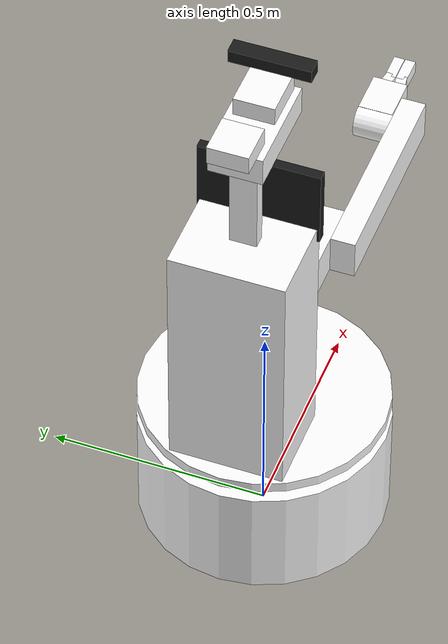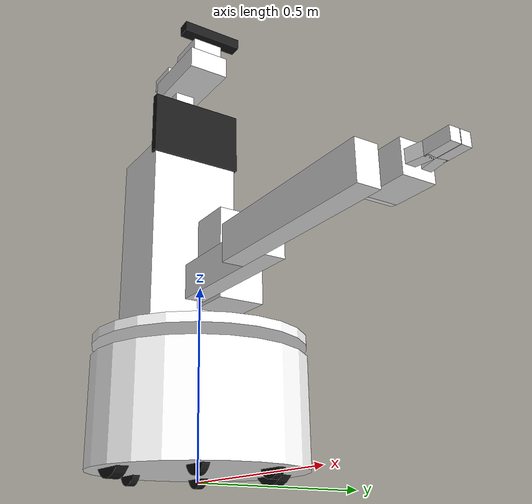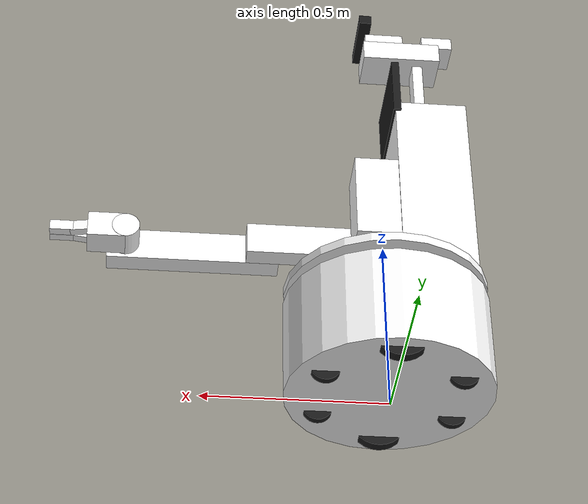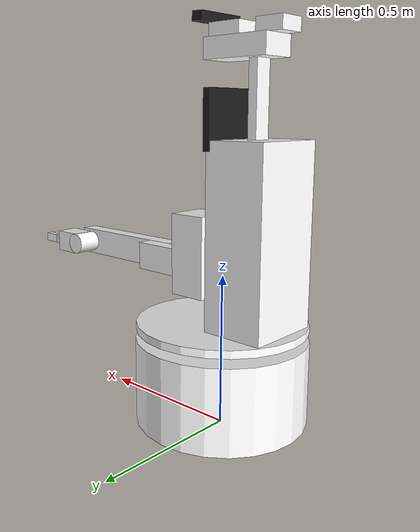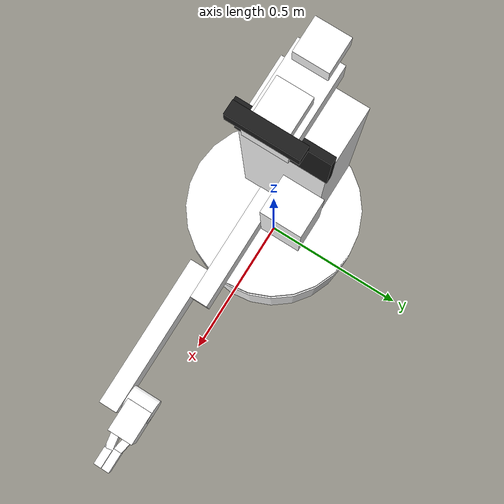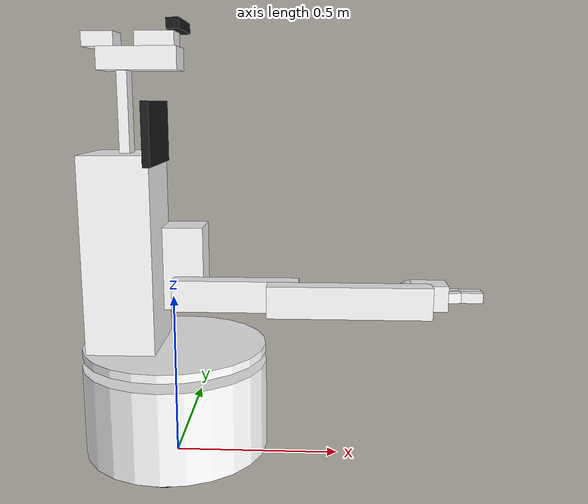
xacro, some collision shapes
<?xml version="1.0" ?>
<robot xmlns:xacro="http://www.ros.org/wiki/xacro" name="korus_v3_mobile_manipulation">
  <xacro:include filename="$(find korus_meta)/resources/urdf/kinematics_base.urdf.xacro"/>
  <xacro:include filename="$(find korus_meta)/resources/urdf/korus_v3_body.urdf.xacro"/>
  <xacro:include filename="$(find korus_meta)/resources/urdf/korus_3DOF_arm.urdf.xacro"/>

  <!-- ************************ Base model ************************* -->
  <xacro:kinematics_base parent="local_manip_start" body_mount_link="base_link"/>

  <!-- ************************ Body model ************************* -->
  <xacro:korus_v3_body body_mount_link="base_link" arm_mount_link="torso_lift_link"/>

  <!-- ************************ Arm model ************************* -->
	<xacro:korus_3DOF_arm arm_mount_link="torso_lift_link"/>
</robot>

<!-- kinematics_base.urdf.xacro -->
<robot xmlns:xacro="http://www.ros.org/wiki/xacro" name="kinematics_base">
  <xacro:include filename="$(find korus_meta)/resources/urdf/materials.urdf.xacro"/>

  <!-- ************************** Properties ************************** -->
  <xacro:property name="wheel_bias" value="0.450"/>
  <xacro:property name="wheel_radius" value="0.075"/>
  <xacro:property name="caster_wheel_bias" value="0.2"/>
  <xacro:property name="caster_wheel_radius" value="0.040"/>

  <!-- ************************** Wheel macro ************************** -->
  <xacro:macro name="wheel" params="name parent length radius off_x off_y off_z type">
    <joint name="${name}_joint" type="${type}">
      <parent link="${parent}"/>
      <child link="${name}_link"/>
      <origin rpy="0 0 ${pi/2}" xyz="${off_x} ${off_y} ${off_z}"/>
    </joint>
    <link name="${name}_link">
      <visual>
        <geometry>
          <cylinder length="${length}" radius="${radius}"/>
        </geometry>
        <origin rpy="0 ${pi/2} 0" xyz="0 0 0"/>
        <material name="black">
          <color rgba="0.1 0.1 0.1 1"/>
        </material>
      </visual>
    </link>
  </xacro:macro>

  <!-- ************************** Differential drive base macro ************************** -->
  <xacro:macro name="kinematics_base" params="parent body_mount_link">
    <link name="${parent}"/>
    <joint name="base_position_x" type="prismatic">
      <parent link="${parent}"/>
      <child link="base_position_x_link"/>
      <origin rpy="0 0 0" xyz="0.0 0.0 0.0"/>
      <axis xyz="1 0 0"/>
      <limit effort="10" lower="-2.0" upper="2.0" velocity="1.0"/>
    </joint>
    <link name="base_position_x_link"/>
    <joint name="base_position_y" type="prismatic">
      <parent link="base_position_x_link"/>
      <child link="base_position_y_link"/>
      <origin rpy="0 0 0" xyz="0.0 0.0 0.0"/>
      <axis xyz="0 1 0"/>
      <limit effort="10" lower="-2.0" upper="2.0" velocity="1.0"/>
    </joint>
    <link name="base_position_y_link"/>
    <joint name="base_heading" type="revolute">
      <parent link="base_position_y_link"/>
      <child link="${body_mount_link}"/>
      <origin rpy="0 0 0" xyz="0.0 0.0 0.075"/>
      <axis xyz="0 0 1"/>
      <limit effort="10" lower="-${pi}" upper="${pi}" velocity="1.0"/>
    </joint>
    <link name="${body_mount_link}">
      <visual>
        <origin rpy="0 0 0" xyz="0.0 0 0.0875"/>
         <geometry>
          <cylinder length="0.275" radius="0.280"/>
        </geometry>
        <xacro:insert_block name="material_white" />
      </visual>
      <collision>
        <origin rpy="0 0 0" xyz="0.0 0 0.0875"/>
         <geometry>
           <cylinder length="0.275" radius="0.280"/>
         </geometry>
         <xacro:insert_block name="material_white" />
      </collision>
    </link>
    <xacro:wheel name="wheel_left" parent="${body_mount_link}" length="0.03" radius="${wheel_radius}" off_x="0.0" off_y="${wheel_bias/2}" off_z="0.0" type="fixed"/>
    <xacro:wheel name="wheel_right" parent="${body_mount_link}" length="0.03" radius="${wheel_radius}" off_x="0.0" off_y="-${wheel_bias/2}" off_z="0.0" type="fixed"/>
    <xacro:wheel name="caster_front_left" parent="${body_mount_link}" length="0.02" radius="${caster_wheel_radius}" off_x="0.18" off_y="${caster_wheel_bias/2}" off_z="-0.035" type="fixed"/>
    <xacro:wheel name="caster_front_right" parent="${body_mount_link}" length="0.02" radius="${caster_wheel_radius}" off_x="0.18" off_y="-${caster_wheel_bias/2}" off_z="-0.035" type="fixed"/>
    <xacro:wheel name="caster_back_left" parent="${body_mount_link}" length="0.02" radius="${caster_wheel_radius}" off_x="-0.18" off_y="${caster_wheel_bias/2}" off_z="-0.035" type="fixed"/>
    <xacro:wheel name="caster_back_right" parent="${body_mount_link}" length="0.02" radius="${caster_wheel_radius}" off_x="-0.18" off_y="-${caster_wheel_bias/2}" off_z="-0.035" type="fixed"/>
  </xacro:macro>
</robot>

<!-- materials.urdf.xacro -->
<robot xmlns:xacro="http://www.ros.org/wiki/xacro" name="materials">

	<!-- ************************ Properties ************************** -->
	<xacro:property name="pi" value="3.1415926535897931" />
	<xacro:property name="rad" value="0.0174532925199" /> <!-- pi/180 -->
	<xacro:property name="material_white">
	  <material name="white">
	    <color rgba="1 1 1 1"/>
	  </material>
	</xacro:property>
	<xacro:property name="material_orange">
	  <material name="orange">
	    <color rgba="1.0 0.7 0.0 1"/>
	  </material>
	</xacro:property>
	<xacro:property name="material_red">
	  <material name="red">
	    <color rgba="1.0 0.0 0.0 1"/>
	  </material>
	</xacro:property>
	<xacro:property name="material_grey_blue">
	  <material name="grey_blue">
	    <color rgba="0.4 0.4 1.0 1"/>
	  </material>
	</xacro:property>
	<xacro:property name="material_blue">
	  <material name="blue">
	    <color rgba="0.0 0.0 1.0 1"/>
	  </material>
	</xacro:property>
	<xacro:property name="material_green">
	  <material name="green">
	    <color rgba="0 .8 0 1"/>
	  </material>
	</xacro:property>
	<xacro:property name="material_grey">
	  <material name="grey">
	    <color rgba="0.7 0.7 0.7 1.0"/>
	  </material>
	</xacro:property>
	<xacro:property name="material_black">
	  <material name="black">
	    <color rgba="0.1 0.1 0.1 1"/>
	  </material>
	</xacro:property>
</robot>

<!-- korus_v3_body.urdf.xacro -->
<robot xmlns:xacro="http://www.ros.org/wiki/xacro" name="korus_v3_body">
  <include filename="$(find korus_meta)/resources/urdf/materials.urdf.xacro"/>

  <!-- ************************** Robot body macro ************************** -->
  <xacro:macro name="korus_v3_body" params="body_mount_link arm_mount_link">

    <!-- ************************** Torso *************************** -->
	  <joint name="torso_turn" type="revolute">
	    <parent link="${body_mount_link}"/>
	    <child link="torso_link"/>
	    <origin rpy="0 0 0" xyz="0.0 0.0 0.2665"/>
	    <axis xyz="0 0 1"/>
	    <limit effort="205.0" lower="-${186*rad}" upper="${160*rad}" velocity="${88.7*rad}"/>
	  </joint>
	  <link name="torso_link">
	    <visual>
	       <geometry>
	        <cylinder length="0.025" radius="0.278"/>
	      </geometry>
	      <origin xyz="0.0 0.0 0.0" rpy="0 0 0"/>
	      <xacro:insert_block name="material_white" />
	    </visual>
      <collision>
         <geometry>
          <cylinder length="0.025" radius="0.278"/>
        </geometry>
        <origin xyz="0.0 0.0 0.0" rpy="0 0 0"/>
        <xacro:insert_block name="material_white" />
      </collision>
	  </link>
	  <joint name="turret" type="fixed">
	    <parent link="torso_link"/>
	    <child link="turret_link"/>
	    <origin xyz="-0.13786 0.0 0.0" rpy="0 0 0"/>
	  </joint>
	  <link name="turret_link">
	    <visual>
	      <geometry>
           <box size="0.204 0.25746 0.57888" />
	      </geometry>
        <origin xyz="0.0 0.0 0.30194" rpy="0.0 0.0 0.0"/>
	      <xacro:insert_block name="material_white" />
	    </visual>
      <collision>
        <geometry>
           <box size="0.204 0.25746 0.57888" />
        </geometry>
        <origin xyz="0.0 0.0 0.30194" rpy="0.0 0.0 0.0"/>
       </collision>
	  </link>

	  <joint name="torso_lift_offset" type="fixed">
	    <parent link="turret_link"/>
	    <child link="torso_lift_offset_link"/>
	    <origin xyz="0.10361 0.010 0.170" rpy="0 0 0"/>
	  </joint>
	  <link name="torso_lift_offset_link"/>

	  <joint name="torso_lift" type="prismatic">
	    <parent link="torso_lift_offset_link"/>
	    <child link="${arm_mount_link}"/>
	    <origin xyz="0 0 0" rpy="0 0 0"/>
	    <axis xyz="0 0 1"/>
	    <limit effort="26.0" lower="-0.002" upper="0.1750" velocity="0.038"/>
	  </joint>
	  <link name="${arm_mount_link}"/>

    <!-- ************************** Neck with tablet ************************** -->
	  <joint name="neck" type="fixed">
	    <parent link="turret_link"/>
	    <child link="neck_link"/>
	    <origin rpy="0 0 0" xyz="0.0125 0.0 0.59138"/>
	  </joint>
	  <link name="neck_link">
	    <visual>
	      <geometry>
          <box size="0.030 0.060 0.23262"/>
	      </geometry>
	      <origin xyz="0.0 0.0 0.11631" rpy="0 0 0"/>
	      <xacro:insert_block name="material_white"/>
	    </visual>
      <collision>
        <geometry>
          <box size="0.030 0.060 0.23262"/>
        </geometry>
        <origin xyz="0.0 0.0 0.11631" rpy="0 0 0"/>
      </collision>
	  </link>

    <joint name="tablet" type="fixed">
      <parent link="neck_link"/>
      <child link="tablet_link"/>
      <origin rpy="0 0 0" xyz="0.085 0.0 0.05812"/>
    </joint>
    <link name="tablet_link">
      <visual>
        <geometry>
          <box size="0.022 0.270 0.1812"/>
        </geometry>
        <origin xyz="0.0 0.0 0.0" rpy="0.0 0.0 0.0"/>
        <xacro:insert_block name="material_black" />
      </visual>
      <collision>
        <geometry>
          <box size="0.022 0.270 0.1812"/>
        </geometry>
        <origin xyz="0.0 0.0 0.0" rpy="0.0 0.0 0.0"/>
      </collision>
    </link>

	  <!-- ************************** Head with ASUS Xtion Pro Live and Stargazer ************************** -->
    <joint name="head" type="fixed">
      <parent link="neck_link"/>
      <child link="head_link"/>
      <origin xyz="0.0 0.0 0.23262" rpy="0 0 0"/>
    </joint>
    <link name="head_link">
      <visual>
        <geometry>
          <box size="0.227 0.11872 0.0645" />
        </geometry>
        <origin xyz="0.0495 0.0 0.03225" rpy="0.0 0.0 0.0"/>
        <xacro:insert_block name="material_white" />
      </visual>
      <collision>
        <geometry>
          <box size="0.227 0.11872 0.0645" />
        </geometry>
        <origin xyz="0.0495 0.0 0.03225" rpy="0.0 0.0 0.0"/>
      </collision>
    </link>

    <joint name="stargazer" type="fixed">
      <parent link="head_link"/>
      <child link="stargazer_link"/>
      <origin xyz="-0.040 0.0 0.1025" rpy="0 0 ${pi}"/>
    </joint>
    <link name="stargazer_link">
      <visual>
        <geometry>
          <box size="0.09065 0.090 0.0417" />
        </geometry>
        <origin xyz="0.02133 0.0 -0.0175" rpy="0.0 0.0 0.0"/>
        <xacro:insert_block name="material_white" />
      </visual>
      <collision>
        <geometry>
          <box size="0.09065 0.090 0.0417" />
        </geometry>
        <origin xyz="0.02133 0.0 -0.0175" rpy="0.0 0.0 0.0"/>
      </collision>
    </link>

    <joint name="head_pan" type="revolute">
      <parent link="head_link"/>
      <child link="head_pan_link"/>
      <origin xyz="0.133 0.0 0.0645" rpy="0 0 0"/>
      <axis xyz="0 0 1"/>
      <limit effort="9.0" lower="${-137*rad}" upper="${137*rad}" velocity="${476*rad}"/>
    </joint>
    <link name="head_pan_link">
      <visual>
        <geometry>
          <box size="0.1122 0.090 0.0417"/>
        </geometry>
        <origin xyz="-0.0339 0.0 0.02085" rpy="0.0 0.0 0.0"/>
        <xacro:insert_block name="material_white"/>
      </visual>
      <collision>
        <geometry>
          <box size="0.1122 0.090 0.0417"/>
        </geometry>
        <origin xyz="-0.0339 0.0 0.02085" rpy="0.0 0.0 0.0"/>
      </collision>
    </link>

    <joint name="head_tilt" type="revolute">
      <parent link="head_pan_link"/>
      <child link="head_tilt_link"/>
      <origin xyz="0.028 0.0 0.0275" rpy="${pi/2} 0 0"/> <!-- x original 0.013 -->
      <axis xyz="0 0 1"/>
      <limit effort="9.0" lower="${-92*rad}" upper="${32*rad}" velocity="${476*rad}"/>
    </joint>
    <link name="head_tilt_link"/>

    <joint name="head_tilt_fixed" type="fixed">
      <parent link="head_link"/>
      <child link="head_tilt_fixed_link"/>
      <origin xyz="0.146 0.0 0.092" rpy="${pi/2} 0 0"/>
    </joint>
    <link name="head_tilt_fixed_link"/>

    <joint name="sensor_3d" type="fixed">
      <parent link="head_tilt_link"/>
      <child link="sensor_3d_link"/>
      <!-- adds 2 deg to yaw, because the xtion is mounted on its surface which is inclined (approx. 2 deg) -->
      <origin xyz="0.0 0.0 0.0" rpy="${-pi/2} 0 0.035"/>
    </joint>
    <link name="sensor_3d_link">
      <visual>
        <origin xyz="0.0075 0.0 0.0315" rpy="${pi/2} 0 ${pi/2}" />
        <geometry>
           <!-- Thank you IHeartRobotics for the Xtion mesh! -->
           <mesh filename="package://korus_meta/resources/meshes/asus_xtion_pro_live.dae" scale="0.001 0.001 0.001"/>
        </geometry>
        <xacro:insert_block name="material_black"/>
      </visual>
      <collision>
        <origin xyz="0.0 0.0032 0.0291" rpy="0 0 0" />
        <geometry>
          <box size="0.036 0.180 0.0298"/>
        </geometry>
      </collision>
    </link>

    <joint name="sensor_3d_depth_joint" type="fixed">
      <origin xyz="0.01 0.0485 0.0315" rpy="0 0.0 0" />
      <parent link="sensor_3d_link" />
      <child link="sensor_3d_depth_frame" />
    </joint>
    <link name="sensor_3d_depth_frame">
      <inertial>
        <mass value="0.01" />
        <origin xyz="0 0 0" />
        <inertia ixx="0.001" ixy="0.0" ixz="0.0"
                 iyy="0.001" iyz="0.0" izz="0.001" />
      </inertial>
    </link>

    <joint name="sensor_3d_depth_optical_joint" type="fixed">
      <origin xyz="0 0 0" rpy="${-pi/2} 0 ${-pi/2}" />
      <parent link="sensor_3d_depth_frame" />
      <child link="sensor_3d_depth_optical_frame" />
    </joint>
    <link name="sensor_3d_depth_optical_frame">
      <inertial>
        <mass value="0.001" />
        <origin xyz="0 0 0" />
        <inertia ixx="0.0001" ixy="0.0" ixz="0.0"
                 iyy="0.0001" iyz="0.0" izz="0.0001" />
      </inertial>
    </link>

    <joint name="sensor_3d_rgb_joint" type="fixed">
      <origin xyz="0.01 0.023 0.0315" rpy="0 -0.017 0" />
      <parent link="sensor_3d_link" />
      <child link="sensor_3d_rgb_frame" />
    </joint>
    <link name="sensor_3d_rgb_frame">
      <inertial>
        <mass value="0.001" />
        <origin xyz="0 0 0" />
        <inertia ixx="0.0001" ixy="0.0" ixz="0.0"
                 iyy="0.0001" iyz="0.0" izz="0.0001" />
      </inertial>
    </link>

    <joint name="sensor_3d_rgb_optical_joint" type="fixed">
      <origin xyz="0 0 0" rpy="${-pi/2} 0 ${-pi/2}" />
      <parent link="sensor_3d_rgb_frame" />
      <child link="sensor_3d_rgb_optical_frame" />
    </joint>
    <link name="sensor_3d_rgb_optical_frame">
      <inertial>
        <mass value="0.001" />
        <origin xyz="0 0 0" />
        <inertia ixx="0.0001" ixy="0.0" ixz="0.0"
                 iyy="0.0001" iyz="0.0" izz="0.0001" />
      </inertial>
    </link>

  </xacro:macro>
</robot>

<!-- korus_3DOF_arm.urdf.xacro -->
<robot xmlns:xacro="http://www.ros.org/wiki/xacro" name="korus_3DOF_arm">
  <include filename="$(find korus_meta)/resources/urdf/materials.urdf.xacro"/>

  <!-- ************************ Arm macro ************************* -->
  <xacro:macro name="korus_3DOF_arm" params="arm_mount_link">
    <joint name="arm_mount" type="fixed">
      <parent link="${arm_mount_link}"/>
      <child link="shoulder_link"/>
      <origin xyz="0.08225 0.0 0.0" rpy="${pi/2} 0.0 0.0"/>
    </joint>
    <link name="shoulder_link">
      <visual>
        <geometry>
          <box size="0.122 0.254 0.131"/>
        </geometry>
        <origin xyz="-0.020 0.070 -0.0655" rpy="0 0 0"/>
        <xacro:insert_block name="material_white"/>
      </visual>
      <collision>
        <geometry>
          <box size="0.122 0.254 0.131"/>
        </geometry>
        <origin xyz="-0.020 0.070 -0.0655" rpy="0 0 0"/>
       </collision>
    </link>

	  <joint name="shoulder" type="revolute">
	    <parent link="shoulder_link"/>
	    <child link="upper_arm_link"/>
      <origin xyz="0 0 0" rpy="0 0 0"/>
	    <axis xyz="0 0 1"/>
	    <limit effort="250.0" lower="${-70*rad}" upper="${92*rad}" velocity="${73*rad}"/>
	  </joint>
	  <link name="upper_arm_link">
	    <visual>
	      <geometry>
	        <box size="0.378 0.095 0.055"/>
	      </geometry>
	      <origin xyz="0.1415 0.0 0.0275" rpy="0 0 0"/>
	      <xacro:insert_block name="material_white" />
	    </visual>
      <collision>
        <geometry>
          <box size="0.378 0.095 0.055"/>
        </geometry>
        <origin xyz="0.1415 0.0 0.0275" rpy="0 0 0"/>
       </collision>
	  </link>

	  <joint name="elbow" type="revolute">
	    <parent link="upper_arm_link"/>
	    <child link="lower_arm_link"/>
	    <origin xyz="0.283 0.0 0.055" rpy="0 0 0"/>
	    <axis xyz="0 0 1"/>
	    <limit effort="200.0" lower="${-200*rad}" upper="${92*rad}" velocity="${91*rad}"/>
	  </joint>
	  <link name="lower_arm_link">
	    <visual>
	      <geometry>
	        <box size="0.477 0.095 0.057"/>
	      </geometry>
	      <origin xyz="0.19426 0.00 0.0285" rpy="0 0 0"/>
	      <xacro:insert_block name="material_white" />
	    </visual>
      <collision>
        <geometry>
          <box size="0.477 0.095 0.057"/>
        </geometry>
        <origin xyz="0.19426 0.00 0.0285" rpy="0 0 0"/>
      </collision>
	  </link>

	  <joint name="wrist" type="revolute">
	    <parent link="lower_arm_link"/>
	    <child link="wrist_link"/>
	    <origin xyz="0.382 0.0 0.0" rpy="0 0 0"/>
	    <axis xyz="0 0 1"/>
	    <limit effort="51.0" lower="${-100*rad}" upper="${100*rad}" velocity="${72.5*rad}"/>
	  </joint>
	  <link name="wrist_link">
	    <visual>
	      <geometry>
          <cylinder length="0.0854" radius="0.038"/>
	      </geometry>
	      <origin xyz="0.0 0.0 -0.0427" rpy="0 0 0"/>
	      <xacro:insert_block name="material_white"/>
	    </visual>
      <collision>
        <geometry>
          <cylinder length="0.0854" radius="0.038"/>
        </geometry>
        <origin xyz="0.0 0.0 -0.0427" rpy="0 0 0"/>
      </collision>
	  </link>

  	<!--   Endeffector (gripper)  -->
	  <joint name="palm" type="fixed">
	    <parent link="wrist_link"/>
	    <child link="palm_link"/>
	    <origin xyz="0.0 0.0 -0.045" rpy="0 0 0"/>
	  </joint>
	  <link name="palm_link">
	    <visual>
	      <geometry>
	        <box size="0.1044 0.077 0.0804"/>
	      </geometry>
	      <origin xyz="0.0522 0.0 0.0" rpy="0 0 0"/>
        <xacro:insert_block name="material_white"/>
      </visual>
      <collision>
        <geometry>
          <box size="0.1044 0.077 0.0804"/>
        </geometry>
        <origin xyz="0.0522 0.0 0.0" rpy="0 0 0"/>
      </collision>
	  </link>

    <joint name="gripper_center" type="fixed">
      <parent link="palm_link"/>
      <child link="gripper_center_link"/>
      <origin xyz="0.15 0.0 0.0" rpy="0 0 0"/>
    </joint>
    <link name="gripper_center_link"/>

	  <joint name="gripper" type="revolute">
	    <parent link="palm_link"/>
	    <child link="gripper_link"/>
	    <origin xyz="0.08 0.0 0.0" rpy="${-pi/2} 0 0"/>
	    <axis xyz="0 0 1"/>
	    <limit effort="33.4" lower="${-2*rad}" upper="${78*rad}" velocity="${80.8*rad}"/>
	  </joint>
	  <link name="gripper_link"/>

    <joint name="finger_left_knuckle_1" type="revolute">
      <parent link="palm_link"/>
      <child link="finger_left_knuckle_1_link"/>
      <origin xyz="0.0925 0.0 -0.022" rpy="${pi/2} ${-10*rad} 0"/>
      <axis xyz="0 0 1"/>
      <limit effort="33.4" lower="${-78*rad}" upper="${2*rad}" velocity="${80.8*rad}"/>
    </joint>
	  <link name="finger_left_knuckle_1_link">
      <visual>
	      <geometry>
	        <box size="0.0595 0.0247 0.0306"/>
	      </geometry>
	      <origin xyz="0.02975 0.0 0.0" rpy="0 0 0"/>
	      <xacro:insert_block name="material_white"/>
	    </visual>
      <collision>
        <geometry>
          <box size="0.0595 0.0247 0.0306"/>
        </geometry>
        <origin xyz="0.02975 0.0 0.0" rpy="0 0 0"/>
      </collision>
	  </link>
    <joint name="finger_left_knuckle_2" type="revolute">
      <parent link="finger_left_knuckle_1_link"/>
      <child link="finger_left_knuckle_2_link"/>
      <origin xyz="0.051 0.0 0.0" rpy="0 0 ${-10*rad}"/>
      <axis xyz="0 0 1"/>
      <limit effort="33.4" lower="${-2*rad}" upper="${78*rad}" velocity="${80.8*rad}"/>
    </joint>
    <link name="finger_left_knuckle_2_link">
      <visual>
        <geometry>
          <box size="0.065 0.0247 0.0306"/>
        </geometry>
        <origin xyz="0.0325 0.0 0.0" rpy="0 0 0"/>
        <xacro:insert_block name="material_white"/>
      </visual>
      <collision>
        <geometry>
          <box size="0.065 0.0247 0.0306"/>
        </geometry>
        <origin xyz="0.0325 0.0 0.0" rpy="0 0 0"/>
      </collision>
    </link>
    <joint name="finger_left_tip" type="fixed">
      <parent link="finger_left_knuckle_2_link"/>
      <child link="finger_left_tip_link"/>
      <origin xyz="0.065 0.0 0.0" rpy="0 0 0"/>
    </joint>
    <link name="finger_left_tip_link"/>

    <joint name="finger_right_knuckle_1" type="revolute">
      <parent link="palm_link"/>
      <child link="finger_right_knuckle_1_link"/>
      <origin xyz="0.0925 0.0 0.022" rpy="${-pi/2} ${10*rad} 0.0"/>
      <axis xyz="0 0 1"/>
      <limit effort="33.4" lower="${-78*rad}" upper="${2*rad}" velocity="${80.8*rad}"/>
    </joint>
    <link name="finger_right_knuckle_1_link">
      <visual>
        <geometry>
          <box size="0.0595 0.0247 0.0306"/>
        </geometry>
        <origin xyz="0.02975 0.0 0.0" rpy="0 0 0"/>
        <xacro:insert_block name="material_white"/>
      </visual>
      <collision>
        <geometry>
          <box size="0.0595 0.0247 0.0306"/>
        </geometry>
        <origin xyz="0.02975 0.0 0.0" rpy="0 0 0"/>
      </collision>
    </link>
    <joint name="finger_right_knuckle_2" type="revolute">
      <parent link="finger_right_knuckle_1_link"/>
      <child link="finger_right_knuckle_2_link"/>
      <origin xyz="0.051 0.0 0.0" rpy="0 0 ${-10*rad}"/>
      <axis xyz="0 0 1"/>
      <limit effort="33.4" lower="${-2*rad}" upper="${78*rad}" velocity="${80.8*rad}"/>
    </joint>
    <link name="finger_right_knuckle_2_link">
      <visual>
        <geometry>
          <box size="0.065 0.0247 0.0306"/>
        </geometry>
        <origin xyz="0.0325 0.0 0.0" rpy="0 0 0"/>
        <xacro:insert_block name="material_white"/>
      </visual>
      <collision>
        <geometry>
          <box size="0.065 0.0247 0.0306"/>
        </geometry>
        <origin xyz="0.0325 0.0 0.0" rpy="0 0 0"/>
      </collision>
    </link>
    <joint name="finger_right_tip" type="fixed">
      <parent link="finger_right_knuckle_2_link"/>
      <child link="finger_right_tip_link"/>
      <origin xyz="0.065 0.0 0.0" rpy="0 0 0"/>
    </joint>
    <link name="finger_right_tip_link"/>

    <joint name="gripper_camera" type="fixed">
      <parent link="palm_link"/>
      <child link="gripper_camera_link"/>
      <origin xyz="0.10015 0 0" rpy="0.0 ${pi/2} 0.0"/>
    </joint>
    <link name="gripper_camera_link">
      <visual>
        <geometry>
          <cylinder length="0.01" radius="0.005"/>
        </geometry>
        <origin xyz="0.0 0.0 0.0" rpy="0 0 0"/>
        <xacro:insert_block name="material_black"/>
      </visual>
      <collision>
        <geometry>
          <cylinder length="0.01" radius="0.005"/>
        </geometry>
        <origin xyz="0.0 0.0 0.0" rpy="0 0 0"/>
        <xacro:insert_block name="material_black"/>
      </collision>
    </link>
  </xacro:macro>
</robot>
